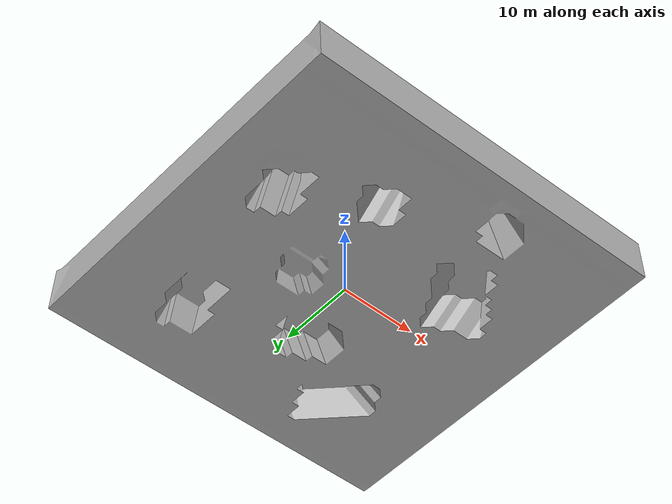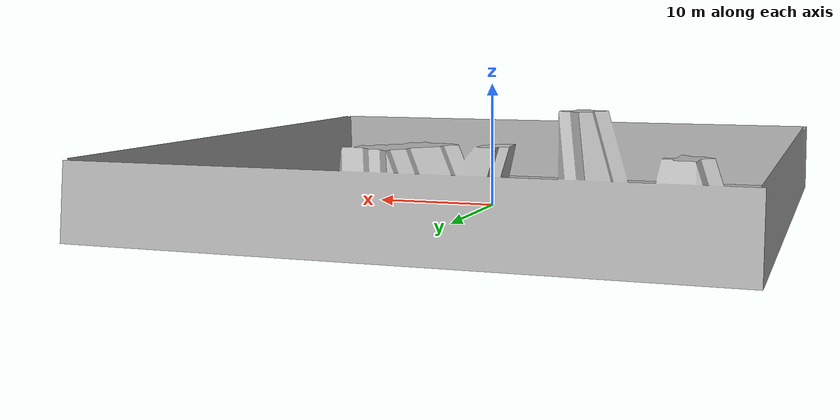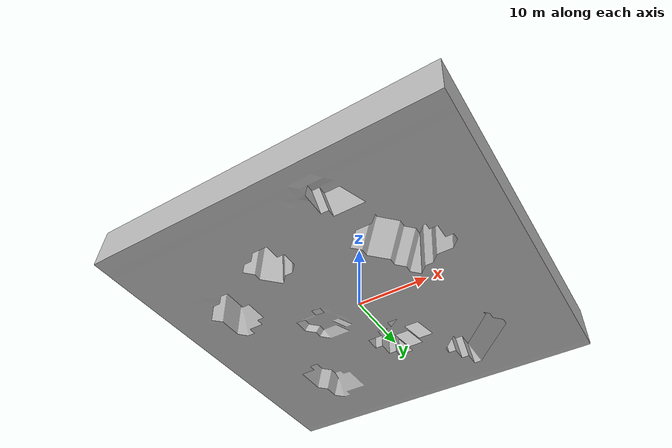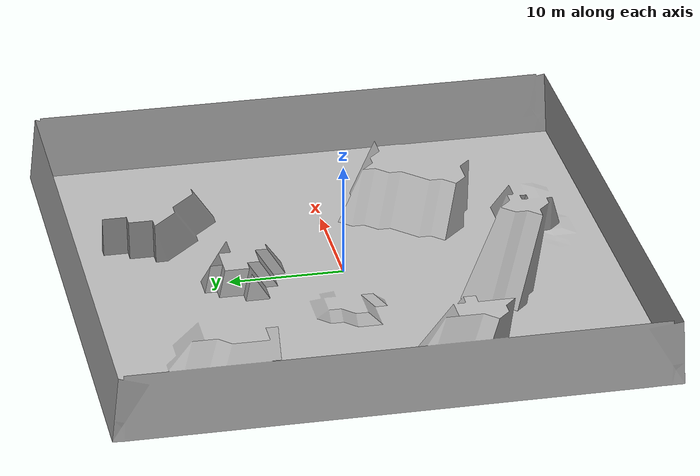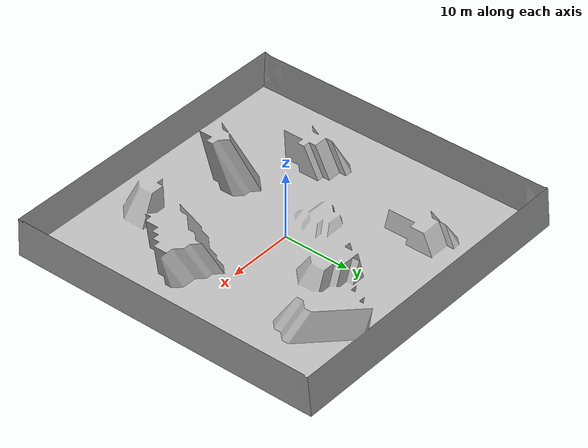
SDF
<?xml version="1.0" ?>
<sdf version="1.6">
  <model name="map">
    <pose>0 0 -0.5 0 0 0</pose>
    <static>true</static>
    <link name="link">
      <collision name="collision">
        <geometry>
          <mesh>
            <uri>model://My/meshes/map.stl</uri>
            <scale>1 1 1</scale>
          </mesh>
        </geometry>
      </collision>

      <visual name="visual">
        <geometry>
          <mesh>
            <uri>model://My/meshes/map.stl</uri>
            <scale>1 1 1</scale>
          </mesh>
        </geometry>
      </visual>
    </link>
  </model>
</sdf>
